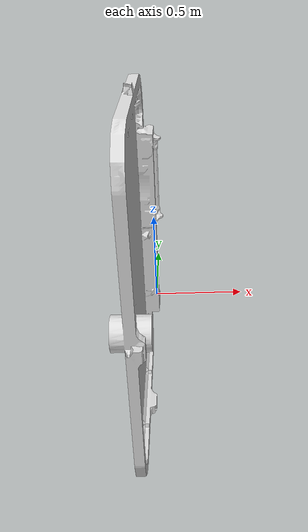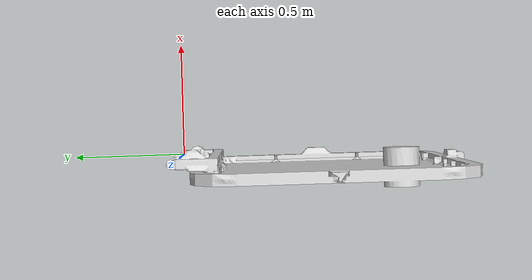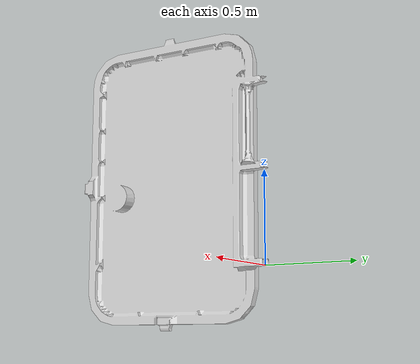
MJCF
<mujoco model="simplified_hatch_4060_face">
  <default>
    <default class="visual">
      <geom group="2" type="mesh" contype="0" conaffinity="0"/>
    </default>
    <default class="collision">
      <geom group="3" type="mesh"/>
    </default>
  </default>
  <asset>
    <material name="mtl_simplified_hatch_4060_face" specular="0.20000000000000004" shininess="1.0" rgba="0.85098039 0.85098039 0.85098039 1.0"/>
    <mesh file="simplified_hatch_4060_face.obj"/>
    <mesh file="simplified_hatch_4060_face_collision_0.obj"/>
    <mesh file="simplified_hatch_4060_face_collision_1.obj"/>
    <mesh file="simplified_hatch_4060_face_collision_2.obj"/>
    <mesh file="simplified_hatch_4060_face_collision_3.obj"/>
    <mesh file="simplified_hatch_4060_face_collision_4.obj"/>
    <mesh file="simplified_hatch_4060_face_collision_5.obj"/>
    <mesh file="simplified_hatch_4060_face_collision_6.obj"/>
    <mesh file="simplified_hatch_4060_face_collision_7.obj"/>
    <mesh file="simplified_hatch_4060_face_collision_8.obj"/>
    <mesh file="simplified_hatch_4060_face_collision_9.obj"/>
    <mesh file="simplified_hatch_4060_face_collision_10.obj"/>
    <mesh file="simplified_hatch_4060_face_collision_11.obj"/>
    <mesh file="simplified_hatch_4060_face_collision_12.obj"/>
    <mesh file="simplified_hatch_4060_face_collision_13.obj"/>
    <mesh file="simplified_hatch_4060_face_collision_14.obj"/>
    <mesh file="simplified_hatch_4060_face_collision_15.obj"/>
    <mesh file="simplified_hatch_4060_face_collision_16.obj"/>
  </asset>
  <worldbody>
    <body name="simplified_hatch_4060_face">
      <geom material="mtl_simplified_hatch_4060_face" mesh="simplified_hatch_4060_face" class="visual"/>
      <geom mesh="simplified_hatch_4060_face_collision_0" rgba="0.9657195375067728 0.809458100322842 0.7441080965051357 1" class="collision"/>
      <geom mesh="simplified_hatch_4060_face_collision_1" rgba="0.1042925683749425 0.3221302979855697 0.6107538592587982 1" class="collision"/>
      <geom mesh="simplified_hatch_4060_face_collision_2" rgba="0.7895725824455043 0.8045233280044451 0.9943986423332969 1" class="collision"/>
      <geom mesh="simplified_hatch_4060_face_collision_3" rgba="0.6942659352806299 0.48492939310249106 0.22877606102740422 1" class="collision"/>
      <geom mesh="simplified_hatch_4060_face_collision_4" rgba="0.5811474973341062 0.6601198808875443 0.6852684305138035 1" class="collision"/>
      <geom mesh="simplified_hatch_4060_face_collision_5" rgba="0.3932899333224581 0.420790327789039 0.06389273948775076 1" class="collision"/>
      <geom mesh="simplified_hatch_4060_face_collision_6" rgba="0.14305724601339098 0.7316190072645611 0.5404861503492207 1" class="collision"/>
      <geom mesh="simplified_hatch_4060_face_collision_7" rgba="0.48388573532770385 0.5701087953949291 0.6041083533109972 1" class="collision"/>
      <geom mesh="simplified_hatch_4060_face_collision_8" rgba="0.440963462519657 0.29388504558624495 0.7003448465573705 1" class="collision"/>
      <geom mesh="simplified_hatch_4060_face_collision_9" rgba="0.41039055399722957 0.8315919087647184 0.6635161823199609 1" class="collision"/>
      <geom mesh="simplified_hatch_4060_face_collision_10" rgba="0.5422072099869336 0.4949422263701312 0.06426250740749595 1" class="collision"/>
      <geom mesh="simplified_hatch_4060_face_collision_11" rgba="0.0003136278010943405 0.355912529867463 0.3068039114880359 1" class="collision"/>
      <geom mesh="simplified_hatch_4060_face_collision_12" rgba="0.02097921493402266 0.5134184429555213 0.3226642783008007 1" class="collision"/>
      <geom mesh="simplified_hatch_4060_face_collision_13" rgba="0.42762737139419527 0.2622332964164462 0.4372485019334126 1" class="collision"/>
      <geom mesh="simplified_hatch_4060_face_collision_14" rgba="0.08947673720252847 0.9468426308236597 0.38973536256595076 1" class="collision"/>
      <geom mesh="simplified_hatch_4060_face_collision_15" rgba="0.28456585614534646 0.27792553607453596 0.32341861746908007 1" class="collision"/>
      <geom mesh="simplified_hatch_4060_face_collision_16" rgba="0.15427080378746705 0.050990782949487334 0.16568457056881947 1" class="collision"/>
    </body>
  </worldbody>
</mujoco>
